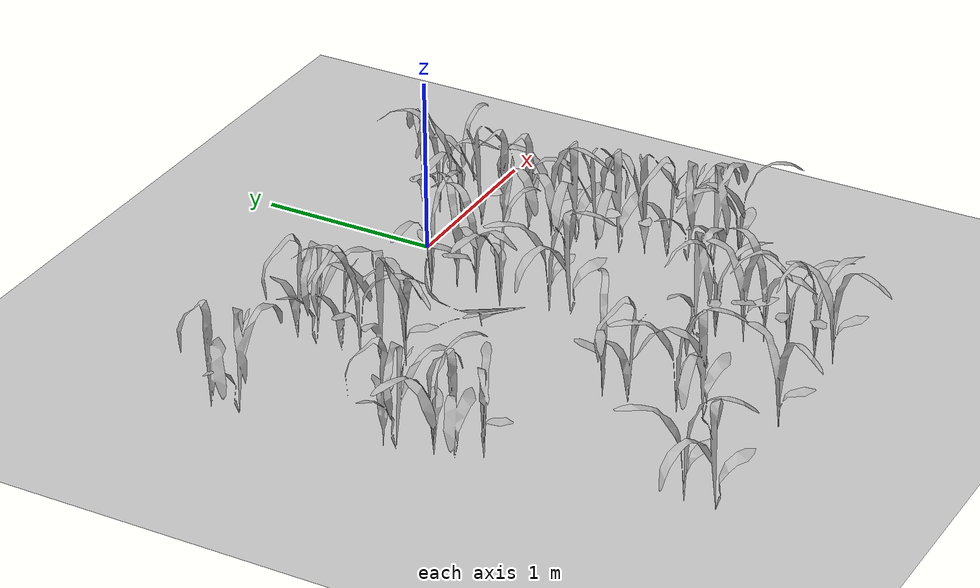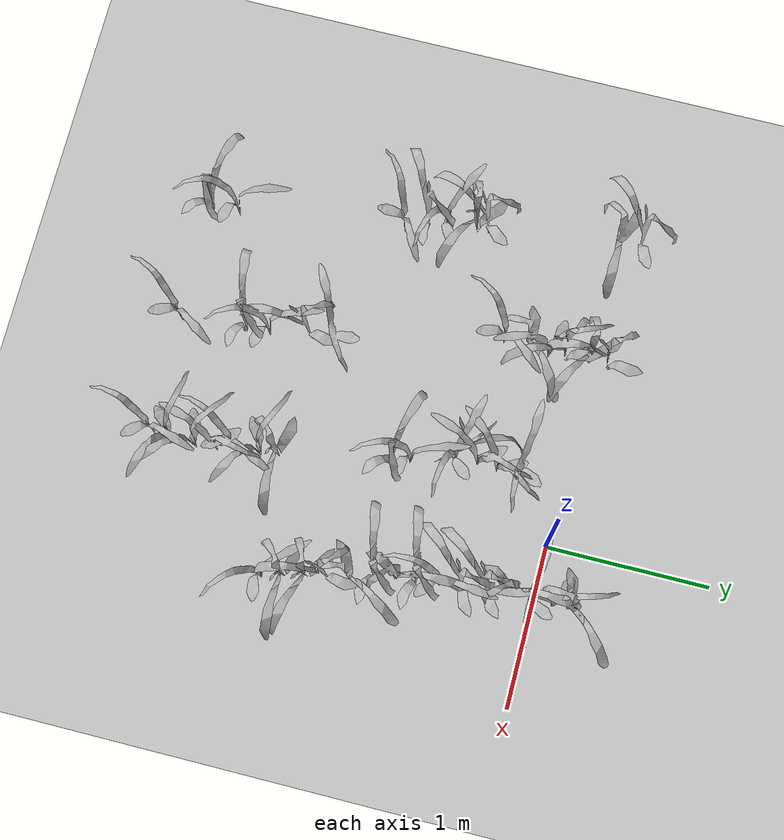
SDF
<sdf version="1.7">
 <world name="default">
  <model name="maize_01_0000">
   <pose>-1.56238 -2.49744 -0.000245 -1.1e-05 1.2e-05 -2.61309</pose>
   <link name="maize_01_link">
    <inertial>
     <pose>0 0 0.01 0 -0 0</pose>
     <mass>0.3</mass>
     <inertia>
      <ixx>0.00334167</ixx>
      <ixy>0</ixy>
      <ixz>0</ixz>
      <iyy>0.00334167</iyy>
      <iyz>0</iyz>
      <izz>1.66667e-05</izz>
     </inertia>
     <pose>0 0 0.1 0 -0 0</pose>
    </inertial>
    <collision name="collision">
     <pose>0 0 0.2 0 -0 0</pose>
     <geometry><box><size>0.02 0.02 0.4</size></box></geometry>
     <surface><friction><ode><mu>10</mu><mu2>10</mu2></ode></friction></surface>
    </collision>
    <visual name="visual">
     <geometry>
      <mesh><uri>model://maize_01/meshes/maize_01.dae</uri><scale>0.683166 0.683166 0.683166</scale></mesh>
     </geometry>
    </visual>
   </link>
   <static>0</static>
  </model>
  <model name="maize_02_0001">
   <pose>-1.57449 -2.3333 -0.000245 -1.2e-05 1.1e-05 -2.29259</pose>
   <link name="maize_02_link">
    <inertial>
     <pose>0 0 0.01 0 -0 0</pose>
     <mass>0.3</mass>
     <inertia>
      <ixx>0.00334167</ixx>
      <ixy>0</ixy>
      <ixz>0</ixz>
      <iyy>0.00334167</iyy>
      <iyz>0</iyz>
      <izz>1.66667e-05</izz>
     </inertia>
     <pose>0 0 0.1 0 -0 0</pose>
    </inertial>
    <collision name="collision">
     <pose>0 0 0.2 0 -0 0</pose>
     <geometry><box><size>0.02 0.02 0.4</size></box></geometry>
     <surface><friction><ode><mu>10</mu><mu2>10</mu2></ode></friction></surface>
    </collision>
    <visual name="visual">
     <geometry>
      <mesh><uri>model://maize_02/meshes/maize_02.dae</uri><scale>0.683166 0.683166 0.683166</scale></mesh>
     </geometry>
    </visual>
   </link>
   <static>0</static>
  </model>
  <model name="maize_02_0002">
   <pose>-1.71635 -1.30596 -1e-06 -6e-06 9.6e-05 2.65717</pose>
   <link name="maize_02_link">
    <inertial>
     <pose>0 0 0.01 0 -0 0</pose>
     <mass>0.3</mass>
     <inertia>
      <ixx>0.00334167</ixx>
      <ixy>0</ixy>
      <ixz>0</ixz>
      <iyy>0.00334167</iyy>
      <iyz>0</iyz>
      <izz>1.66667e-05</izz>
     </inertia>
     <pose>0 0 0.1 0 -0 0</pose>
    </inertial>
    <collision name="collision">
     <pose>0 0 0.2 0 -0 0</pose>
     <geometry><box><size>0.02 0.02 0.4</size></box></geometry>
     <surface><friction><ode><mu>10</mu><mu2>10</mu2></ode></friction></surface>
    </collision>
    <visual name="visual">
     <geometry>
      <mesh><uri>model://maize_02/meshes/maize_02.dae</uri><scale>0.683166 0.683166 0.683166</scale></mesh>
     </geometry>
    </visual>
   </link>
   <static>0</static>
  </model>
  <model name="maize_01_0003">
   <pose>-1.77135 -1.1665 -1e-06 6e-06 -9.6e-05 -1.87712</pose>
   <link name="maize_01_link">
    <inertial>
     <pose>0 0 0.01 0 -0 0</pose>
     <mass>0.3</mass>
     <inertia>
      <ixx>0.00334167</ixx>
      <ixy>0</ixy>
      <ixz>0</ixz>
      <iyy>0.00334167</iyy>
      <iyz>0</iyz>
      <izz>1.66667e-05</izz>
     </inertia>
     <pose>0 0 0.1 0 -0 0</pose>
    </inertial>
    <collision name="collision">
     <pose>0 0 0.2 0 -0 0</pose>
     <geometry><box><size>0.02 0.02 0.4</size></box></geometry>
     <surface><friction><ode><mu>10</mu><mu2>10</mu2></ode></friction></surface>
    </collision>
    <visual name="visual">
     <geometry>
      <mesh><uri>model://maize_01/meshes/maize_01.dae</uri><scale>0.683166 0.683166 0.683166</scale></mesh>
     </geometry>
    </visual>
   </link>
   <static>0</static>
  </model>
  <model name="maize_02_0004">
   <pose>-1.7847 -1.05874 -0.000245 -1.2e-05 -1.2e-05 -1.43268</pose>
   <link name="maize_02_link">
    <inertial>
     <pose>0 0 0.01 0 -0 0</pose>
     <mass>0.3</mass>
     <inertia>
      <ixx>0.00334167</ixx>
      <ixy>0</ixy>
      <ixz>0</ixz>
      <iyy>0.00334167</iyy>
      <iyz>0</iyz>
      <izz>1.66667e-05</izz>
     </inertia>
     <pose>0 0 0.1 0 -0 0</pose>
    </inertial>
    <collision name="collision">
     <pose>0 0 0.2 0 -0 0</pose>
     <geometry><box><size>0.02 0.02 0.4</size></box></geometry>
     <surface><friction><ode><mu>10</mu><mu2>10</mu2></ode></friction></surface>
    </collision>
    <visual name="visual">
     <geometry>
      <mesh><uri>model://maize_02/meshes/maize_02.dae</uri><scale>0.683166 0.683166 0.683166</scale></mesh>
     </geometry>
    </visual>
   </link>
   <static>0</static>
  </model>
  <model name="maize_01_0005">
   <pose>-1.82976 -0.870115 -0.000245 -1.1e-05 1.2e-05 0.373501</pose>
   <link name="maize_01_link">
    <inertial>
     <pose>0 0 0.01 0 -0 0</pose>
     <mass>0.3</mass>
     <inertia>
      <ixx>0.00334167</ixx>
      <ixy>0</ixy>
      <ixz>0</ixz>
      <iyy>0.00334167</iyy>
      <iyz>0</iyz>
      <izz>1.66667e-05</izz>
     </inertia>
     <pose>0 0 0.1 0 -0 0</pose>
    </inertial>
    <collision name="collision">
     <pose>0 0 0.2 0 -0 0</pose>
     <geometry><box><size>0.02 0.02 0.4</size></box></geometry>
     <surface><friction><ode><mu>10</mu><mu2>10</mu2></ode></friction></surface>
    </collision>
    <visual name="visual">
     <geometry>
      <mesh><uri>model://maize_01/meshes/maize_01.dae</uri><scale>0.683166 0.683166 0.683166</scale></mesh>
     </geometry>
    </visual>
   </link>
   <static>0</static>
  </model>
  <model name="maize_01_0006">
   <pose>-1.842 -0.800149 -0.000245 -1.2e-05 -1.2e-05 -1.18066</pose>
   <link name="maize_01_link">
    <inertial>
     <pose>0 0 0.01 0 -0 0</pose>
     <mass>0.3</mass>
     <inertia>
      <ixx>0.00334167</ixx>
      <ixy>0</ixy>
      <ixz>0</ixz>
      <iyy>0.00334167</iyy>
      <iyz>0</iyz>
      <izz>1.66667e-05</izz>
     </inertia>
     <pose>0 0 0.1 0 -0 0</pose>
    </inertial>
    <collision name="collision">
     <pose>0 0 0.2 0 -0 0</pose>
     <geometry><box><size>0.02 0.02 0.4</size></box></geometry>
     <surface><friction><ode><mu>10</mu><mu2>10</mu2></ode></friction></surface>
    </collision>
    <visual name="visual">
     <geometry>
      <mesh><uri>model://maize_01/meshes/maize_01.dae</uri><scale>0.683166 0.683166 0.683166</scale></mesh>
     </geometry>
    </visual>
   </link>
   <static>0</static>
  </model>
  <model name="maize_01_0007">
   <pose>-1.92135 -0.009355 -0.000245 1.2e-05 1.2e-05 0.784979</pose>
   <link name="maize_01_link">
    <inertial>
     <pose>0 0 0.01 0 -0 0</pose>
     <mass>0.3</mass>
     <inertia>
      <ixx>0.00334167</ixx>
      <ixy>0</ixy>
      <ixz>0</ixz>
      <iyy>0.00334167</iyy>
      <iyz>0</iyz>
      <izz>1.66667e-05</izz>
     </inertia>
     <pose>0 0 0.1 0 -0 0</pose>
    </inertial>
    <collision name="collision">
     <pose>0 0 0.2 0 -0 0</pose>
     <geometry><box><size>0.02 0.02 0.4</size></box></geometry>
     <surface><friction><ode><mu>10</mu><mu2>10</mu2></ode></friction></surface>
    </collision>
    <visual name="visual">
     <geometry>
      <mesh><uri>model://maize_01/meshes/maize_01.dae</uri><scale>0.683166 0.683166 0.683166</scale></mesh>
     </geometry>
    </visual>
   </link>
   <static>0</static>
  </model>
  <model name="maize_01_0008">
   <pose>-1.9509 0.143433 -0.000245 1.2e-05 -1.2e-05 -1.60922</pose>
   <link name="maize_01_link">
    <inertial>
     <pose>0 0 0.01 0 -0 0</pose>
     <mass>0.3</mass>
     <inertia>
      <ixx>0.00334167</ixx>
      <ixy>0</ixy>
      <ixz>0</ixz>
      <iyy>0.00334167</iyy>
      <iyz>0</iyz>
      <izz>1.66667e-05</izz>
     </inertia>
     <pose>0 0 0.1 0 -0 0</pose>
    </inertial>
    <collision name="collision">
     <pose>0 0 0.2 0 -0 0</pose>
     <geometry><box><size>0.02 0.02 0.4</size></box></geometry>
     <surface><friction><ode><mu>10</mu><mu2>10</mu2></ode></friction></surface>
    </collision>
    <visual name="visual">
     <geometry>
      <mesh><uri>model://maize_01/meshes/maize_01.dae</uri><scale>0.683166 0.683166 0.683166</scale></mesh>
     </geometry>
    </visual>
   </link>
   <static>0</static>
  </model>
  <model name="maize_02_0027">
   <pose>-0.819779 -2.48896 -0.000245 1.2e-05 -1.2e-05 3.12581</pose>
   <link name="maize_02_link">
    <inertial>
     <pose>0 0 0.01 0 -0 0</pose>
     <mass>0.3</mass>
     <inertia>
      <ixx>0.00334167</ixx>
      <ixy>0</ixy>
      <ixz>0</ixz>
      <iyy>0.00334167</iyy>
      <iyz>0</iyz>
      <izz>1.66667e-05</izz>
     </inertia>
     <pose>0 0 0.1 0 -0 0</pose>
    </inertial>
    <collision name="collision">
     <pose>0 0 0.2 0 -0 0</pose>
     <geometry><box><size>0.02 0.02 0.4</size></box></geometry>
     <surface><friction><ode><mu>10</mu><mu2>10</mu2></ode></friction></surface>
    </collision>
    <visual name="visual">
     <geometry>
      <mesh><uri>model://maize_02/meshes/maize_02.dae</uri><scale>0.683166 0.683166 0.683166</scale></mesh>
     </geometry>
    </visual>
   </link>
   <static>0</static>
  </model>
  <model name="maize_01_0028">
   <pose>-0.861064 -2.08833 -0.000245 -1.2e-05 1.2e-05 -2.16184</pose>
   <link name="maize_01_link">
    <inertial>
     <pose>0 0 0.01 0 -0 0</pose>
     <mass>0.3</mass>
     <inertia>
      <ixx>0.00334167</ixx>
      <ixy>0</ixy>
      <ixz>0</ixz>
      <iyy>0.00334167</iyy>
      <iyz>0</iyz>
      <izz>1.66667e-05</izz>
     </inertia>
     <pose>0 0 0.1 0 -0 0</pose>
    </inertial>
    <collision name="collision">
     <pose>0 0 0.2 0 -0 0</pose>
     <geometry><box><size>0.02 0.02 0.4</size></box></geometry>
     <surface><friction><ode><mu>10</mu><mu2>10</mu2></ode></friction></surface>
    </collision>
    <visual name="visual">
     <geometry>
      <mesh><uri>model://maize_01/meshes/maize_01.dae</uri><scale>0.683166 0.683166 0.683166</scale></mesh>
     </geometry>
    </visual>
   </link>
   <static>0</static>
  </model>
  <model name="maize_02_0029">
   <pose>-0.866126 -1.94356 -0.000245 1.2e-05 1.2e-05 -2.22616</pose>
   <link name="maize_02_link">
    <inertial>
     <pose>0 0 0.01 0 -0 0</pose>
     <mass>0.3</mass>
     <inertia>
      <ixx>0.00334167</ixx>
      <ixy>0</ixy>
      <ixz>0</ixz>
      <iyy>0.00334167</iyy>
      <iyz>0</iyz>
      <izz>1.66667e-05</izz>
     </inertia>
     <pose>0 0 0.1 0 -0 0</pose>
    </inertial>
    <collision name="collision">
     <pose>0 0 0.2 0 -0 0</pose>
     <geometry><box><size>0.02 0.02 0.4</size></box></geometry>
     <surface><friction><ode><mu>10</mu><mu2>10</mu2></ode></friction></surface>
    </collision>
    <visual name="visual">
     <geometry>
      <mesh><uri>model://maize_02/meshes/maize_02.dae</uri><scale>0.683166 0.683166 0.683166</scale></mesh>
     </geometry>
    </visual>
   </link>
   <static>0</static>
  </model>
  <model name="maize_01_0031">
   <pose>-0.91153 -1.69245 -0.000245 -1.2e-05 -1.2e-05 -0.69003</pose>
   <link name="maize_01_link">
    <inertial>
     <pose>0 0 0.01 0 -0 0</pose>
     <mass>0.3</mass>
     <inertia>
      <ixx>0.00334167</ixx>
      <ixy>0</ixy>
      <ixz>0</ixz>
      <iyy>0.00334167</iyy>
      <iyz>0</iyz>
      <izz>1.66667e-05</izz>
     </inertia>
     <pose>0 0 0.1 0 -0 0</pose>
    </inertial>
    <collision name="collision">
     <pose>0 0 0.2 0 -0 0</pose>
     <geometry><box><size>0.02 0.02 0.4</size></box></geometry>
     <surface><friction><ode><mu>10</mu><mu2>10</mu2></ode></friction></surface>
    </collision>
    <visual name="visual">
     <geometry>
      <mesh><uri>model://maize_01/meshes/maize_01.dae</uri><scale>0.683166 0.683166 0.683166</scale></mesh>
     </geometry>
    </visual>
   </link>
   <static>0</static>
  </model>
  <model name="maize_02_0032">
   <pose>-0.927617 -1.55364 -0.000245 -1.2e-05 -1.2e-05 -0.512034</pose>
   <link name="maize_02_link">
    <inertial>
     <pose>0 0 0.01 0 -0 0</pose>
     <mass>0.3</mass>
     <inertia>
      <ixx>0.00334167</ixx>
      <ixy>0</ixy>
      <ixz>0</ixz>
      <iyy>0.00334167</iyy>
      <iyz>0</iyz>
      <izz>1.66667e-05</izz>
     </inertia>
     <pose>0 0 0.1 0 -0 0</pose>
    </inertial>
    <collision name="collision">
     <pose>0 0 0.2 0 -0 0</pose>
     <geometry><box><size>0.02 0.02 0.4</size></box></geometry>
     <surface><friction><ode><mu>10</mu><mu2>10</mu2></ode></friction></surface>
    </collision>
    <visual name="visual">
     <geometry>
      <mesh><uri>model://maize_02/meshes/maize_02.dae</uri><scale>0.683166 0.683166 0.683166</scale></mesh>
     </geometry>
    </visual>
   </link>
   <static>0</static>
  </model>
  <model name="maize_02_0033">
   <pose>-1.15936 -0.538884 -1e-06 9.6e-05 6e-06 2.99613</pose>
   <link name="maize_02_link">
    <inertial>
     <pose>0 0 0.01 0 -0 0</pose>
     <mass>0.3</mass>
     <inertia>
      <ixx>0.00334167</ixx>
      <ixy>0</ixy>
      <ixz>0</ixz>
      <iyy>0.00334167</iyy>
      <iyz>0</iyz>
      <izz>1.66667e-05</izz>
     </inertia>
     <pose>0 0 0.1 0 -0 0</pose>
    </inertial>
    <collision name="collision">
     <pose>0 0 0.2 0 -0 0</pose>
     <geometry><box><size>0.02 0.02 0.4</size></box></geometry>
     <surface><friction><ode><mu>10</mu><mu2>10</mu2></ode></friction></surface>
    </collision>
    <visual name="visual">
     <geometry>
      <mesh><uri>model://maize_02/meshes/maize_02.dae</uri><scale>0.683166 0.683166 0.683166</scale></mesh>
     </geometry>
    </visual>
   </link>
   <static>0</static>
  </model>
  <model name="maize_01_0034">
   <pose>-1.15095 -0.387124 -1e-06 -9.6e-05 -6e-06 1.37063</pose>
   <link name="maize_01_link">
    <inertial>
     <pose>0 0 0.01 0 -0 0</pose>
     <mass>0.3</mass>
     <inertia>
      <ixx>0.00334167</ixx>
      <ixy>0</ixy>
      <ixz>0</ixz>
      <iyy>0.00334167</iyy>
      <iyz>0</iyz>
      <izz>1.66667e-05</izz>
     </inertia>
     <pose>0 0 0.1 0 -0 0</pose>
    </inertial>
    <collision name="collision">
     <pose>0 0 0.2 0 -0 0</pose>
     <geometry><box><size>0.02 0.02 0.4</size></box></geometry>
     <surface><friction><ode><mu>10</mu><mu2>10</mu2></ode></friction></surface>
    </collision>
    <visual name="visual">
     <geometry>
      <mesh><uri>model://maize_01/meshes/maize_01.dae</uri><scale>0.683166 0.683166 0.683166</scale></mesh>
     </geometry>
    </visual>
   </link>
   <static>0</static>
  </model>
  <model name="maize_02_0035">
   <pose>-1.14788 -0.256612 -0.000245 1.2e-05 -1.1e-05 0.89574</pose>
   <link name="maize_02_link">
    <inertial>
     <pose>0 0 0.01 0 -0 0</pose>
     <mass>0.3</mass>
     <inertia>
      <ixx>0.00334167</ixx>
      <ixy>0</ixy>
      <ixz>0</ixz>
      <iyy>0.00334167</iyy>
      <iyz>0</iyz>
      <izz>1.66667e-05</izz>
     </inertia>
     <pose>0 0 0.1 0 -0 0</pose>
    </inertial>
    <collision name="collision">
     <pose>0 0 0.2 0 -0 0</pose>
     <geometry><box><size>0.02 0.02 0.4</size></box></geometry>
     <surface><friction><ode><mu>10</mu><mu2>10</mu2></ode></friction></surface>
    </collision>
    <visual name="visual">
     <geometry>
      <mesh><uri>model://maize_02/meshes/maize_02.dae</uri><scale>0.683166 0.683166 0.683166</scale></mesh>
     </geometry>
    </visual>
   </link>
   <static>0</static>
  </model>
  <model name="maize_01_0036">
   <pose>-1.15282 -0.150797 -0.000245 -1.2e-05 1.2e-05 -0.307279</pose>
   <link name="maize_01_link">
    <inertial>
     <pose>0 0 0.01 0 -0 0</pose>
     <mass>0.3</mass>
     <inertia>
      <ixx>0.00334167</ixx>
      <ixy>0</ixy>
      <ixz>0</ixz>
      <iyy>0.00334167</iyy>
      <iyz>0</iyz>
      <izz>1.66667e-05</izz>
     </inertia>
     <pose>0 0 0.1 0 -0 0</pose>
    </inertial>
    <collision name="collision">
     <pose>0 0 0.2 0 -0 0</pose>
     <geometry><box><size>0.02 0.02 0.4</size></box></geometry>
     <surface><friction><ode><mu>10</mu><mu2>10</mu2></ode></friction></surface>
    </collision>
    <visual name="visual">
     <geometry>
      <mesh><uri>model://maize_01/meshes/maize_01.dae</uri><scale>0.683166 0.683166 0.683166</scale></mesh>
     </geometry>
    </visual>
   </link>
   <static>0</static>
  </model>
  <model name="maize_01_0037">
   <pose>-1.1693 -0.007906 -0.000245 -1.2e-05 -1.2e-05 0.300907</pose>
   <link name="maize_01_link">
    <inertial>
     <pose>0 0 0.01 0 -0 0</pose>
     <mass>0.3</mass>
     <inertia>
      <ixx>0.00334167</ixx>
      <ixy>0</ixy>
      <ixz>0</ixz>
      <iyy>0.00334167</iyy>
      <iyz>0</iyz>
      <izz>1.66667e-05</izz>
     </inertia>
     <pose>0 0 0.1 0 -0 0</pose>
    </inertial>
    <collision name="collision">
     <pose>0 0 0.2 0 -0 0</pose>
     <geometry><box><size>0.02 0.02 0.4</size></box></geometry>
     <surface><friction><ode><mu>10</mu><mu2>10</mu2></ode></friction></surface>
    </collision>
    <visual name="visual">
     <geometry>
      <mesh><uri>model://maize_01/meshes/maize_01.dae</uri><scale>0.683166 0.683166 0.683166</scale></mesh>
     </geometry>
    </visual>
   </link>
   <static>0</static>
  </model>
  <model name="maize_01_0038">
   <pose>-1.16467 0.111374 -0.000245 1.1e-05 1.2e-05 -0.635661</pose>
   <link name="maize_01_link">
    <inertial>
     <pose>0 0 0.01 0 -0 0</pose>
     <mass>0.3</mass>
     <inertia>
      <ixx>0.00334167</ixx>
      <ixy>0</ixy>
      <ixz>0</ixz>
      <iyy>0.00334167</iyy>
      <iyz>0</iyz>
      <izz>1.66667e-05</izz>
     </inertia>
     <pose>0 0 0.1 0 -0 0</pose>
    </inertial>
    <collision name="collision">
     <pose>0 0 0.2 0 -0 0</pose>
     <geometry><box><size>0.02 0.02 0.4</size></box></geometry>
     <surface><friction><ode><mu>10</mu><mu2>10</mu2></ode></friction></surface>
    </collision>
    <visual name="visual">
     <geometry>
      <mesh><uri>model://maize_01/meshes/maize_01.dae</uri><scale>0.683166 0.683166 0.683166</scale></mesh>
     </geometry>
    </visual>
   </link>
   <static>0</static>
  </model>
  <model name="maize_02_0057">
   <pose>-0.092457 -2.45888 -1e-06 -9.6e-05 6e-06 -2.8704</pose>
   <link name="maize_02_link">
    <inertial>
     <pose>0 0 0.01 0 -0 0</pose>
     <mass>0.3</mass>
     <inertia>
      <ixx>0.00334167</ixx>
      <ixy>0</ixy>
      <ixz>0</ixz>
      <iyy>0.00334167</iyy>
      <iyz>0</iyz>
      <izz>1.66667e-05</izz>
     </inertia>
     <pose>0 0 0.1 0 -0 0</pose>
    </inertial>
    <collision name="collision">
     <pose>0 0 0.2 0 -0 0</pose>
     <geometry><box><size>0.02 0.02 0.4</size></box></geometry>
     <surface><friction><ode><mu>10</mu><mu2>10</mu2></ode></friction></surface>
    </collision>
    <visual name="visual">
     <geometry>
      <mesh><uri>model://maize_02/meshes/maize_02.dae</uri><scale>0.683166 0.683166 0.683166</scale></mesh>
     </geometry>
    </visual>
   </link>
   <static>0</static>
  </model>
  <model name="maize_02_0058">
   <pose>-0.064724 -2.34538 -1e-06 -6e-06 -9.6e-05 1.86368</pose>
   <link name="maize_02_link">
    <inertial>
     <pose>0 0 0.01 0 -0 0</pose>
     <mass>0.3</mass>
     <inertia>
      <ixx>0.00334167</ixx>
      <ixy>0</ixy>
      <ixz>0</ixz>
      <iyy>0.00334167</iyy>
      <iyz>0</iyz>
      <izz>1.66667e-05</izz>
     </inertia>
     <pose>0 0 0.1 0 -0 0</pose>
    </inertial>
    <collision name="collision">
     <pose>0 0 0.2 0 -0 0</pose>
     <geometry><box><size>0.02 0.02 0.4</size></box></geometry>
     <surface><friction><ode><mu>10</mu><mu2>10</mu2></ode></friction></surface>
    </collision>
    <visual name="visual">
     <geometry>
      <mesh><uri>model://maize_02/meshes/maize_02.dae</uri><scale>0.683166 0.683166 0.683166</scale></mesh>
     </geometry>
    </visual>
   </link>
   <static>0</static>
  </model>
  <model name="maize_02_0059">
   <pose>-0.074092 -2.19604 -1e-06 6e-06 -9.6e-05 1.41356</pose>
   <link name="maize_02_link">
    <inertial>
     <pose>0 0 0.01 0 -0 0</pose>
     <mass>0.3</mass>
     <inertia>
      <ixx>0.00334167</ixx>
      <ixy>0</ixy>
      <ixz>0</ixz>
      <iyy>0.00334167</iyy>
      <iyz>0</iyz>
      <izz>1.66667e-05</izz>
     </inertia>
     <pose>0 0 0.1 0 -0 0</pose>
    </inertial>
    <collision name="collision">
     <pose>0 0 0.2 0 -0 0</pose>
     <geometry><box><size>0.02 0.02 0.4</size></box></geometry>
     <surface><friction><ode><mu>10</mu><mu2>10</mu2></ode></friction></surface>
    </collision>
    <visual name="visual">
     <geometry>
      <mesh><uri>model://maize_02/meshes/maize_02.dae</uri><scale>0.683166 0.683166 0.683166</scale></mesh>
     </geometry>
    </visual>
   </link>
   <static>0</static>
  </model>
  <model name="maize_02_0060">
   <pose>-0.08723 -2.06379 -1e-06 9.6e-05 -6e-06 0.298001</pose>
   <link name="maize_02_link">
    <inertial>
     <pose>0 0 0.01 0 -0 0</pose>
     <mass>0.3</mass>
     <inertia>
      <ixx>0.00334167</ixx>
      <ixy>0</ixy>
      <ixz>0</ixz>
      <iyy>0.00334167</iyy>
      <iyz>0</iyz>
      <izz>1.66667e-05</izz>
     </inertia>
     <pose>0 0 0.1 0 -0 0</pose>
    </inertial>
    <collision name="collision">
     <pose>0 0 0.2 0 -0 0</pose>
     <geometry><box><size>0.02 0.02 0.4</size></box></geometry>
     <surface><friction><ode><mu>10</mu><mu2>10</mu2></ode></friction></surface>
    </collision>
    <visual name="visual">
     <geometry>
      <mesh><uri>model://maize_02/meshes/maize_02.dae</uri><scale>0.683166 0.683166 0.683166</scale></mesh>
     </geometry>
    </visual>
   </link>
   <static>0</static>
  </model>
  <model name="maize_02_0061">
   <pose>-0.1201 -1.96366 -1e-06 -9.6e-05 -6e-06 -3.0168</pose>
   <link name="maize_02_link">
    <inertial>
     <pose>0 0 0.01 0 -0 0</pose>
     <mass>0.3</mass>
     <inertia>
      <ixx>0.00334167</ixx>
      <ixy>0</ixy>
      <ixz>0</ixz>
      <iyy>0.00334167</iyy>
      <iyz>0</iyz>
      <izz>1.66667e-05</izz>
     </inertia>
     <pose>0 0 0.1 0 -0 0</pose>
    </inertial>
    <collision name="collision">
     <pose>0 0 0.2 0 -0 0</pose>
     <geometry><box><size>0.02 0.02 0.4</size></box></geometry>
     <surface><friction><ode><mu>10</mu><mu2>10</mu2></ode></friction></surface>
    </collision>
    <visual name="visual">
     <geometry>
      <mesh><uri>model://maize_02/meshes/maize_02.dae</uri><scale>0.683166 0.683166 0.683166</scale></mesh>
     </geometry>
    </visual>
   </link>
   <static>0</static>
  </model>
  <model name="maize_02_0062">
   <pose>-0.1215 -1.80403 -1e-06 6e-06 -9.6e-05 1.64861</pose>
   <link name="maize_02_link">
    <inertial>
     <pose>0 0 0.01 0 -0 0</pose>
     <mass>0.3</mass>
     <inertia>
      <ixx>0.00334167</ixx>
      <ixy>0</ixy>
      <ixz>0</ixz>
      <iyy>0.00334167</iyy>
      <iyz>0</iyz>
      <izz>1.66667e-05</izz>
     </inertia>
     <pose>0 0 0.1 0 -0 0</pose>
    </inertial>
    <collision name="collision">
     <pose>0 0 0.2 0 -0 0</pose>
     <geometry><box><size>0.02 0.02 0.4</size></box></geometry>
     <surface><friction><ode><mu>10</mu><mu2>10</mu2></ode></friction></surface>
    </collision>
    <visual name="visual">
     <geometry>
      <mesh><uri>model://maize_02/meshes/maize_02.dae</uri><scale>0.683166 0.683166 0.683166</scale></mesh>
     </geometry>
    </visual>
   </link>
   <static>0</static>
  </model>
  <model name="maize_01_0063">
   <pose>-0.143512 -1.69263 -0.000245 -1.2e-05 1.2e-05 0.889791</pose>
   <link name="maize_01_link">
    <inertial>
     <pose>0 0 0.01 0 -0 0</pose>
     <mass>0.3</mass>
     <inertia>
      <ixx>0.00334167</ixx>
      <ixy>0</ixy>
      <ixz>0</ixz>
      <iyy>0.00334167</iyy>
      <iyz>0</iyz>
      <izz>1.66667e-05</izz>
     </inertia>
     <pose>0 0 0.1 0 -0 0</pose>
    </inertial>
    <collision name="collision">
     <pose>0 0 0.2 0 -0 0</pose>
     <geometry><box><size>0.02 0.02 0.4</size></box></geometry>
     <surface><friction><ode><mu>10</mu><mu2>10</mu2></ode></friction></surface>
    </collision>
    <visual name="visual">
     <geometry>
      <mesh><uri>model://maize_01/meshes/maize_01.dae</uri><scale>0.683166 0.683166 0.683166</scale></mesh>
     </geometry>
    </visual>
   </link>
   <static>0</static>
  </model>
  <model name="maize_01_0064">
   <pose>-0.267365 -1.02292 -0.000245 -1.2e-05 -1.2e-05 -2.6239</pose>
   <link name="maize_01_link">
    <inertial>
     <pose>0 0 0.01 0 -0 0</pose>
     <mass>0.3</mass>
     <inertia>
      <ixx>0.00334167</ixx>
      <ixy>0</ixy>
      <ixz>0</ixz>
      <iyy>0.00334167</iyy>
      <iyz>0</iyz>
      <izz>1.66667e-05</izz>
     </inertia>
     <pose>0 0 0.1 0 -0 0</pose>
    </inertial>
    <collision name="collision">
     <pose>0 0 0.2 0 -0 0</pose>
     <geometry><box><size>0.02 0.02 0.4</size></box></geometry>
     <surface><friction><ode><mu>10</mu><mu2>10</mu2></ode></friction></surface>
    </collision>
    <visual name="visual">
     <geometry>
      <mesh><uri>model://maize_01/meshes/maize_01.dae</uri><scale>0.683166 0.683166 0.683166</scale></mesh>
     </geometry>
    </visual>
   </link>
   <static>0</static>
  </model>
  <model name="maize_02_0065">
   <pose>-0.297231 -0.913552 -0.000245 -1.2e-05 1.1e-05 -2.2689</pose>
   <link name="maize_02_link">
    <inertial>
     <pose>0 0 0.01 0 -0 0</pose>
     <mass>0.3</mass>
     <inertia>
      <ixx>0.00334167</ixx>
      <ixy>0</ixy>
      <ixz>0</ixz>
      <iyy>0.00334167</iyy>
      <iyz>0</iyz>
      <izz>1.66667e-05</izz>
     </inertia>
     <pose>0 0 0.1 0 -0 0</pose>
    </inertial>
    <collision name="collision">
     <pose>0 0 0.2 0 -0 0</pose>
     <geometry><box><size>0.02 0.02 0.4</size></box></geometry>
     <surface><friction><ode><mu>10</mu><mu2>10</mu2></ode></friction></surface>
    </collision>
    <visual name="visual">
     <geometry>
      <mesh><uri>model://maize_02/meshes/maize_02.dae</uri><scale>0.683166 0.683166 0.683166</scale></mesh>
     </geometry>
    </visual>
   </link>
   <static>0</static>
  </model>
  <model name="maize_02_0066">
   <pose>-0.320452 -0.790327 0.01 0.824413 1.57079 -3.14159</pose>
   <link name="maize_02_link">
    <inertial>
     <pose>0 0 0.01 0 -0 0</pose>
     <mass>0.3</mass>
     <inertia>
      <ixx>0.00334167</ixx>
      <ixy>0</ixy>
      <ixz>0</ixz>
      <iyy>0.00334167</iyy>
      <iyz>0</iyz>
      <izz>1.66667e-05</izz>
     </inertia>
     <pose>0 0 0.1 0 -0 0</pose>
    </inertial>
    <collision name="collision">
     <pose>0 0 0.2 0 -0 0</pose>
     <geometry><box><size>0.02 0.02 0.4</size></box></geometry>
     <surface><friction><ode><mu>10</mu><mu2>10</mu2></ode></friction></surface>
    </collision>
    <visual name="visual">
     <geometry>
      <mesh><uri>model://maize_02/meshes/maize_02.dae</uri><scale>0.683166 0.683166 0.683166</scale></mesh>
     </geometry>
    </visual>
   </link>
   <static>0</static>
  </model>
  <model name="maize_02_0067">
   <pose>-0.369479 -0.653596 -0.000245 -1.2e-05 1.2e-05 -1.24056</pose>
   <link name="maize_02_link">
    <inertial>
     <pose>0 0 0.01 0 -0 0</pose>
     <mass>0.3</mass>
     <inertia>
      <ixx>0.00334167</ixx>
      <ixy>0</ixy>
      <ixz>0</ixz>
      <iyy>0.00334167</iyy>
      <iyz>0</iyz>
      <izz>1.66667e-05</izz>
     </inertia>
     <pose>0 0 0.1 0 -0 0</pose>
    </inertial>
    <collision name="collision">
     <pose>0 0 0.2 0 -0 0</pose>
     <geometry><box><size>0.02 0.02 0.4</size></box></geometry>
     <surface><friction><ode><mu>10</mu><mu2>10</mu2></ode></friction></surface>
    </collision>
    <visual name="visual">
     <geometry>
      <mesh><uri>model://maize_02/meshes/maize_02.dae</uri><scale>0.683166 0.683166 0.683166</scale></mesh>
     </geometry>
    </visual>
   </link>
   <static>0</static>
  </model>
  <model name="maize_02_0068">
   <pose>-0.380591 -0.517043 -0.000245 1.2e-05 1.2e-05 0.202026</pose>
   <link name="maize_02_link">
    <inertial>
     <pose>0 0 0.01 0 -0 0</pose>
     <mass>0.3</mass>
     <inertia>
      <ixx>0.00334167</ixx>
      <ixy>0</ixy>
      <ixz>0</ixz>
      <iyy>0.00334167</iyy>
      <iyz>0</iyz>
      <izz>1.66667e-05</izz>
     </inertia>
     <pose>0 0 0.1 0 -0 0</pose>
    </inertial>
    <collision name="collision">
     <pose>0 0 0.2 0 -0 0</pose>
     <geometry><box><size>0.02 0.02 0.4</size></box></geometry>
     <surface><friction><ode><mu>10</mu><mu2>10</mu2></ode></friction></surface>
    </collision>
    <visual name="visual">
     <geometry>
      <mesh><uri>model://maize_02/meshes/maize_02.dae</uri><scale>0.683166 0.683166 0.683166</scale></mesh>
     </geometry>
    </visual>
   </link>
   <static>0</static>
  </model>
  <model name="maize_02_0069">
   <pose>-0.372327 -0.395749 -0.000245 1.2e-05 -1.2e-05 -0.130622</pose>
   <link name="maize_02_link">
    <inertial>
     <pose>0 0 0.01 0 -0 0</pose>
     <mass>0.3</mass>
     <inertia>
      <ixx>0.00334167</ixx>
      <ixy>0</ixy>
      <ixz>0</ixz>
      <iyy>0.00334167</iyy>
      <iyz>0</iyz>
      <izz>1.66667e-05</izz>
     </inertia>
     <pose>0 0 0.1 0 -0 0</pose>
    </inertial>
    <collision name="collision">
     <pose>0 0 0.2 0 -0 0</pose>
     <geometry><box><size>0.02 0.02 0.4</size></box></geometry>
     <surface><friction><ode><mu>10</mu><mu2>10</mu2></ode></friction></surface>
    </collision>
    <visual name="visual">
     <geometry>
      <mesh><uri>model://maize_02/meshes/maize_02.dae</uri><scale>0.683166 0.683166 0.683166</scale></mesh>
     </geometry>
    </visual>
   </link>
   <static>0</static>
  </model>
  <model name="maize_02_0070">
   <pose>-0.407567 -0.258154 -0.000245 -1.2e-05 -1.1e-05 -1.04038</pose>
   <link name="maize_02_link">
    <inertial>
     <pose>0 0 0.01 0 -0 0</pose>
     <mass>0.3</mass>
     <inertia>
      <ixx>0.00334167</ixx>
      <ixy>0</ixy>
      <ixz>0</ixz>
      <iyy>0.00334167</iyy>
      <iyz>0</iyz>
      <izz>1.66667e-05</izz>
     </inertia>
     <pose>0 0 0.1 0 -0 0</pose>
    </inertial>
    <collision name="collision">
     <pose>0 0 0.2 0 -0 0</pose>
     <geometry><box><size>0.02 0.02 0.4</size></box></geometry>
     <surface><friction><ode><mu>10</mu><mu2>10</mu2></ode></friction></surface>
    </collision>
    <visual name="visual">
     <geometry>
      <mesh><uri>model://maize_02/meshes/maize_02.dae</uri><scale>0.683166 0.683166 0.683166</scale></mesh>
     </geometry>
    </visual>
   </link>
   <static>0</static>
  </model>
  <model name="maize_02_0095">
   <pose>0.59568 -1.60069 -1e-06 -6e-06 -9.6e-05 -1.84065</pose>
   <link name="maize_02_link">
    <inertial>
     <pose>0 0 0.01 0 -0 0</pose>
     <mass>0.3</mass>
     <inertia>
      <ixx>0.00334167</ixx>
      <ixy>0</ixy>
      <ixz>0</ixz>
      <iyy>0.00334167</iyy>
      <iyz>0</iyz>
      <izz>1.66667e-05</izz>
     </inertia>
     <pose>0 0 0.1 0 -0 0</pose>
    </inertial>
    <collision name="collision">
     <pose>0 0 0.2 0 -0 0</pose>
     <geometry><box><size>0.02 0.02 0.4</size></box></geometry>
     <surface><friction><ode><mu>10</mu><mu2>10</mu2></ode></friction></surface>
    </collision>
    <visual name="visual">
     <geometry>
      <mesh><uri>model://maize_02/meshes/maize_02.dae</uri><scale>0.683166 0.683166 0.683166</scale></mesh>
     </geometry>
    </visual>
   </link>
   <static>0</static>
  </model>
  <model name="maize_01_0096">
   <pose>0.55292 -1.46974 -1e-06 6e-06 9.6e-05 0.833143</pose>
   <link name="maize_01_link">
    <inertial>
     <pose>0 0 0.01 0 -0 0</pose>
     <mass>0.3</mass>
     <inertia>
      <ixx>0.00334167</ixx>
      <ixy>0</ixy>
      <ixz>0</ixz>
      <iyy>0.00334167</iyy>
      <iyz>0</iyz>
      <izz>1.66667e-05</izz>
     </inertia>
     <pose>0 0 0.1 0 -0 0</pose>
    </inertial>
    <collision name="collision">
     <pose>0 0 0.2 0 -0 0</pose>
     <geometry><box><size>0.02 0.02 0.4</size></box></geometry>
     <surface><friction><ode><mu>10</mu><mu2>10</mu2></ode></friction></surface>
    </collision>
    <visual name="visual">
     <geometry>
      <mesh><uri>model://maize_01/meshes/maize_01.dae</uri><scale>0.683166 0.683166 0.683166</scale></mesh>
     </geometry>
    </visual>
   </link>
   <static>0</static>
  </model>
  <model name="maize_01_0097">
   <pose>0.524215 -1.32871 -1e-06 -9.6e-05 -6e-06 0.536292</pose>
   <link name="maize_01_link">
    <inertial>
     <pose>0 0 0.01 0 -0 0</pose>
     <mass>0.3</mass>
     <inertia>
      <ixx>0.00334167</ixx>
      <ixy>0</ixy>
      <ixz>0</ixz>
      <iyy>0.00334167</iyy>
      <iyz>0</iyz>
      <izz>1.66667e-05</izz>
     </inertia>
     <pose>0 0 0.1 0 -0 0</pose>
    </inertial>
    <collision name="collision">
     <pose>0 0 0.2 0 -0 0</pose>
     <geometry><box><size>0.02 0.02 0.4</size></box></geometry>
     <surface><friction><ode><mu>10</mu><mu2>10</mu2></ode></friction></surface>
    </collision>
    <visual name="visual">
     <geometry>
      <mesh><uri>model://maize_01/meshes/maize_01.dae</uri><scale>0.683166 0.683166 0.683166</scale></mesh>
     </geometry>
    </visual>
   </link>
   <static>0</static>
  </model>
  <model name="maize_01_0098">
   <pose>0.500595 -1.21586 -1e-06 -9.6e-05 6e-06 -0.54448</pose>
   <link name="maize_01_link">
    <inertial>
     <pose>0 0 0.01 0 -0 0</pose>
     <mass>0.3</mass>
     <inertia>
      <ixx>0.00334167</ixx>
      <ixy>0</ixy>
      <ixz>0</ixz>
      <iyy>0.00334167</iyy>
      <iyz>0</iyz>
      <izz>1.66667e-05</izz>
     </inertia>
     <pose>0 0 0.1 0 -0 0</pose>
    </inertial>
    <collision name="collision">
     <pose>0 0 0.2 0 -0 0</pose>
     <geometry><box><size>0.02 0.02 0.4</size></box></geometry>
     <surface><friction><ode><mu>10</mu><mu2>10</mu2></ode></friction></surface>
    </collision>
    <visual name="visual">
     <geometry>
      <mesh><uri>model://maize_01/meshes/maize_01.dae</uri><scale>0.683166 0.683166 0.683166</scale></mesh>
     </geometry>
    </visual>
   </link>
   <static>0</static>
  </model>
  <model name="maize_01_0099">
   <pose>0.480959 -1.08997 -1e-06 -6e-06 9.6e-05 1.78292</pose>
   <link name="maize_01_link">
    <inertial>
     <pose>0 0 0.01 0 -0 0</pose>
     <mass>0.3</mass>
     <inertia>
      <ixx>0.00334167</ixx>
      <ixy>0</ixy>
      <ixz>0</ixz>
      <iyy>0.00334167</iyy>
      <iyz>0</iyz>
      <izz>1.66667e-05</izz>
     </inertia>
     <pose>0 0 0.1 0 -0 0</pose>
    </inertial>
    <collision name="collision">
     <pose>0 0 0.2 0 -0 0</pose>
     <geometry><box><size>0.02 0.02 0.4</size></box></geometry>
     <surface><friction><ode><mu>10</mu><mu2>10</mu2></ode></friction></surface>
    </collision>
    <visual name="visual">
     <geometry>
      <mesh><uri>model://maize_01/meshes/maize_01.dae</uri><scale>0.683166 0.683166 0.683166</scale></mesh>
     </geometry>
    </visual>
   </link>
   <static>0</static>
  </model>
  <model name="maize_01_0100">
   <pose>0.440857 -0.947482 -1e-06 -6e-06 -9.6e-05 -2.1436</pose>
   <link name="maize_01_link">
    <inertial>
     <pose>0 0 0.01 0 -0 0</pose>
     <mass>0.3</mass>
     <inertia>
      <ixx>0.00334167</ixx>
      <ixy>0</ixy>
      <ixz>0</ixz>
      <iyy>0.00334167</iyy>
      <iyz>0</iyz>
      <izz>1.66667e-05</izz>
     </inertia>
     <pose>0 0 0.1 0 -0 0</pose>
    </inertial>
    <collision name="collision">
     <pose>0 0 0.2 0 -0 0</pose>
     <geometry><box><size>0.02 0.02 0.4</size></box></geometry>
     <surface><friction><ode><mu>10</mu><mu2>10</mu2></ode></friction></surface>
    </collision>
    <visual name="visual">
     <geometry>
      <mesh><uri>model://maize_01/meshes/maize_01.dae</uri><scale>0.683166 0.683166 0.683166</scale></mesh>
     </geometry>
    </visual>
   </link>
   <static>0</static>
  </model>
  <model name="maize_01_0101">
   <pose>0.415423 -0.823674 -1e-06 9.6e-05 -6e-06 2.38806</pose>
   <link name="maize_01_link">
    <inertial>
     <pose>0 0 0.01 0 -0 0</pose>
     <mass>0.3</mass>
     <inertia>
      <ixx>0.00334167</ixx>
      <ixy>0</ixy>
      <ixz>0</ixz>
      <iyy>0.00334167</iyy>
      <iyz>0</iyz>
      <izz>1.66667e-05</izz>
     </inertia>
     <pose>0 0 0.1 0 -0 0</pose>
    </inertial>
    <collision name="collision">
     <pose>0 0 0.2 0 -0 0</pose>
     <geometry><box><size>0.02 0.02 0.4</size></box></geometry>
     <surface><friction><ode><mu>10</mu><mu2>10</mu2></ode></friction></surface>
    </collision>
    <visual name="visual">
     <geometry>
      <mesh><uri>model://maize_01/meshes/maize_01.dae</uri><scale>0.683166 0.683166 0.683166</scale></mesh>
     </geometry>
    </visual>
   </link>
   <static>0</static>
  </model>
  <model name="maize_01_0102">
   <pose>0.407212 -0.699248 -1e-06 -6e-06 -9.6e-05 -2.14107</pose>
   <link name="maize_01_link">
    <inertial>
     <pose>0 0 0.01 0 -0 0</pose>
     <mass>0.3</mass>
     <inertia>
      <ixx>0.00334167</ixx>
      <ixy>0</ixy>
      <ixz>0</ixz>
      <iyy>0.00334167</iyy>
      <iyz>0</iyz>
      <izz>1.66667e-05</izz>
     </inertia>
     <pose>0 0 0.1 0 -0 0</pose>
    </inertial>
    <collision name="collision">
     <pose>0 0 0.2 0 -0 0</pose>
     <geometry><box><size>0.02 0.02 0.4</size></box></geometry>
     <surface><friction><ode><mu>10</mu><mu2>10</mu2></ode></friction></surface>
    </collision>
    <visual name="visual">
     <geometry>
      <mesh><uri>model://maize_01/meshes/maize_01.dae</uri><scale>0.683166 0.683166 0.683166</scale></mesh>
     </geometry>
    </visual>
   </link>
   <static>0</static>
  </model>
  <model name="maize_02_0103">
   <pose>0.382729 -0.563423 -1e-06 9.6e-05 6e-06 -2.67213</pose>
   <link name="maize_02_link">
    <inertial>
     <pose>0 0 0.01 0 -0 0</pose>
     <mass>0.3</mass>
     <inertia>
      <ixx>0.00334167</ixx>
      <ixy>0</ixy>
      <ixz>0</ixz>
      <iyy>0.00334167</iyy>
      <iyz>0</iyz>
      <izz>1.66667e-05</izz>
     </inertia>
     <pose>0 0 0.1 0 -0 0</pose>
    </inertial>
    <collision name="collision">
     <pose>0 0 0.2 0 -0 0</pose>
     <geometry><box><size>0.02 0.02 0.4</size></box></geometry>
     <surface><friction><ode><mu>10</mu><mu2>10</mu2></ode></friction></surface>
    </collision>
    <visual name="visual">
     <geometry>
      <mesh><uri>model://maize_02/meshes/maize_02.dae</uri><scale>0.683166 0.683166 0.683166</scale></mesh>
     </geometry>
    </visual>
   </link>
   <static>0</static>
  </model>
  <model name="maize_01_0104">
   <pose>0.365101 -0.427716 -1e-06 6e-06 -9.6e-05 -1.50089</pose>
   <link name="maize_01_link">
    <inertial>
     <pose>0 0 0.01 0 -0 0</pose>
     <mass>0.3</mass>
     <inertia>
      <ixx>0.00334167</ixx>
      <ixy>0</ixy>
      <ixz>0</ixz>
      <iyy>0.00334167</iyy>
      <iyz>0</iyz>
      <izz>1.66667e-05</izz>
     </inertia>
     <pose>0 0 0.1 0 -0 0</pose>
    </inertial>
    <collision name="collision">
     <pose>0 0 0.2 0 -0 0</pose>
     <geometry><box><size>0.02 0.02 0.4</size></box></geometry>
     <surface><friction><ode><mu>10</mu><mu2>10</mu2></ode></friction></surface>
    </collision>
    <visual name="visual">
     <geometry>
      <mesh><uri>model://maize_01/meshes/maize_01.dae</uri><scale>0.683166 0.683166 0.683166</scale></mesh>
     </geometry>
    </visual>
   </link>
   <static>0</static>
  </model>
  <model name="maize_01_0105">
   <pose>0.342555 -0.284159 -1e-06 6e-06 -9.6e-05 -1.4249</pose>
   <link name="maize_01_link">
    <inertial>
     <pose>0 0 0.01 0 -0 0</pose>
     <mass>0.3</mass>
     <inertia>
      <ixx>0.00334167</ixx>
      <ixy>0</ixy>
      <ixz>0</ixz>
      <iyy>0.00334167</iyy>
      <iyz>0</iyz>
      <izz>1.66667e-05</izz>
     </inertia>
     <pose>0 0 0.1 0 -0 0</pose>
    </inertial>
    <collision name="collision">
     <pose>0 0 0.2 0 -0 0</pose>
     <geometry><box><size>0.02 0.02 0.4</size></box></geometry>
     <surface><friction><ode><mu>10</mu><mu2>10</mu2></ode></friction></surface>
    </collision>
    <visual name="visual">
     <geometry>
      <mesh><uri>model://maize_01/meshes/maize_01.dae</uri><scale>0.683166 0.683166 0.683166</scale></mesh>
     </geometry>
    </visual>
   </link>
   <static>0</static>
  </model>
  <model name="maize_01_0106">
   <pose>0.338343 -0.152385 -1e-06 -6e-06 9.6e-05 2.30889</pose>
   <link name="maize_01_link">
    <inertial>
     <pose>0 0 0.01 0 -0 0</pose>
     <mass>0.3</mass>
     <inertia>
      <ixx>0.00334167</ixx>
      <ixy>0</ixy>
      <ixz>0</ixz>
      <iyy>0.00334167</iyy>
      <iyz>0</iyz>
      <izz>1.66667e-05</izz>
     </inertia>
     <pose>0 0 0.1 0 -0 0</pose>
    </inertial>
    <collision name="collision">
     <pose>0 0 0.2 0 -0 0</pose>
     <geometry><box><size>0.02 0.02 0.4</size></box></geometry>
     <surface><friction><ode><mu>10</mu><mu2>10</mu2></ode></friction></surface>
    </collision>
    <visual name="visual">
     <geometry>
      <mesh><uri>model://maize_01/meshes/maize_01.dae</uri><scale>0.683166 0.683166 0.683166</scale></mesh>
     </geometry>
    </visual>
   </link>
   <static>0</static>
  </model>
  <model name="maize_02_0107">
   <pose>0.343045 -0.022107 -1e-06 6e-06 -9.6e-05 -1.00215</pose>
   <link name="maize_02_link">
    <inertial>
     <pose>0 0 0.01 0 -0 0</pose>
     <mass>0.3</mass>
     <inertia>
      <ixx>0.00334167</ixx>
      <ixy>0</ixy>
      <ixz>0</ixz>
      <iyy>0.00334167</iyy>
      <iyz>0</iyz>
      <izz>1.66667e-05</izz>
     </inertia>
     <pose>0 0 0.1 0 -0 0</pose>
    </inertial>
    <collision name="collision">
     <pose>0 0 0.2 0 -0 0</pose>
     <geometry><box><size>0.02 0.02 0.4</size></box></geometry>
     <surface><friction><ode><mu>10</mu><mu2>10</mu2></ode></friction></surface>
    </collision>
    <visual name="visual">
     <geometry>
      <mesh><uri>model://maize_02/meshes/maize_02.dae</uri><scale>0.683166 0.683166 0.683166</scale></mesh>
     </geometry>
    </visual>
   </link>
   <static>0</static>
  </model>
  <model name="maize_02_0108">
   <pose>0.341001 0.113529 -1e-06 6e-06 9.6e-05 0.788274</pose>
   <link name="maize_02_link">
    <inertial>
     <pose>0 0 0.01 0 -0 0</pose>
     <mass>0.3</mass>
     <inertia>
      <ixx>0.00334167</ixx>
      <ixy>0</ixy>
      <ixz>0</ixz>
      <iyy>0.00334167</iyy>
      <iyz>0</iyz>
      <izz>1.66667e-05</izz>
     </inertia>
     <pose>0 0 0.1 0 -0 0</pose>
    </inertial>
    <collision name="collision">
     <pose>0 0 0.2 0 -0 0</pose>
     <geometry><box><size>0.02 0.02 0.4</size></box></geometry>
     <surface><friction><ode><mu>10</mu><mu2>10</mu2></ode></friction></surface>
    </collision>
    <visual name="visual">
     <geometry>
      <mesh><uri>model://maize_02/meshes/maize_02.dae</uri><scale>0.683166 0.683166 0.683166</scale></mesh>
     </geometry>
    </visual>
   </link>
   <static>0</static>
  </model>
  <model name="maize_01_0109">
   <pose>0.335798 0.204879 -1e-06 6e-06 9.6e-05 1.49712</pose>
   <link name="maize_01_link">
    <inertial>
     <pose>0 0 0.01 0 -0 0</pose>
     <mass>0.3</mass>
     <inertia>
      <ixx>0.00334167</ixx>
      <ixy>0</ixy>
      <ixz>0</ixz>
      <iyy>0.00334167</iyy>
      <iyz>0</iyz>
      <izz>1.66667e-05</izz>
     </inertia>
     <pose>0 0 0.1 0 -0 0</pose>
    </inertial>
    <collision name="collision">
     <pose>0 0 0.2 0 -0 0</pose>
     <geometry><box><size>0.02 0.02 0.4</size></box></geometry>
     <surface><friction><ode><mu>10</mu><mu2>10</mu2></ode></friction></surface>
    </collision>
    <visual name="visual">
     <geometry>
      <mesh><uri>model://maize_01/meshes/maize_01.dae</uri><scale>0.683166 0.683166 0.683166</scale></mesh>
     </geometry>
    </visual>
   </link>
   <static>0</static>
  </model>
  <model name="ground_plane">
   <static>1</static>
   <link name="link">
    <collision name="collision">
     <geometry><plane><normal>0 0 1</normal><size>100 100</size></plane></geometry>
     <surface>
      <contact><collide_bitmask>65535</collide_bitmask></contact>
      <friction><ode><mu>100</mu><mu2>50</mu2></ode></friction>
     </surface>
    </collision>
    <visual name="visual">
     <cast_shadows>0</cast_shadows>
     <geometry><plane><normal>0 0 1</normal><size>100 100</size></plane></geometry>
     <material>
      <script><uri>file://media/materials/scripts/gazebo.material</uri><name>Gazebo/Grey</name></script>
     </material>
    </visual>
   </link>
   <pose>-0.658985 -4.9067 0 0 -0 0</pose>
  </model>
 </world>
</sdf>
